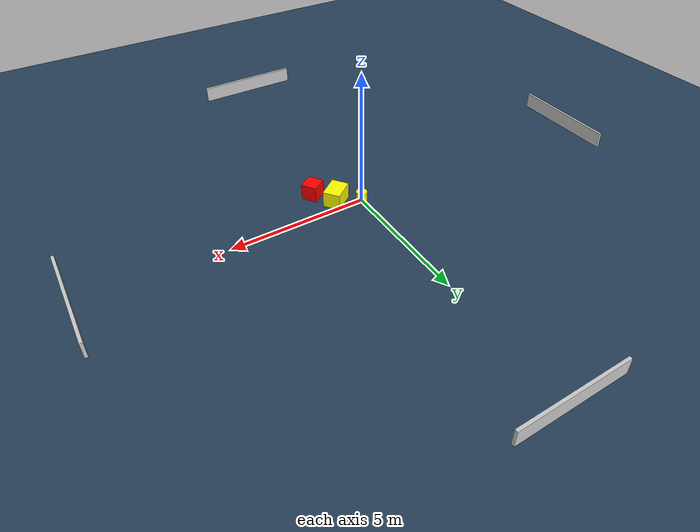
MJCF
<?xml version="1.0" ?>
<mujoco model="generated_environment">
  <option timestep="0.01" integrator="RK4" cone="elliptic"/>
  <default>
    <geom density="1"/>
  </default>
  <asset>
    <texture builtin="gradient" height="3072" name="skybox" rgb1="0.3 0.5 0.7" rgb2="0 0 0" type="skybox" width="512"/>
    <texture builtin="checker" height="300" name="groundplane" rgb1="0.2 0.3 0.4" rgb2="0.1 0.2 0.3" type="2d" width="300"/>
    <material name="groundplane" reflectance="0.2" texrepeat="5 5" texture="groundplane"/>
  </asset>
  <worldbody>
    <light dir="0 0 -1" directional="true" pos="0 0 1.5"/>
    <geom condim="3" friction="0.5 0.005 0.001" material="groundplane" name="floor" pos="0 0 0" size="0 0 0.05" type="plane"/>
    <body name="walls">
      <geom name="wall_1" condim="4" pos="-10.0 0.0 0.3" rgba="0.800000011920929 0.800000011920929 0.800000011920929 1.0" size="0.05 2.0 0.3" type="box"/>
      <geom name="wall_2" condim="4" pos="10.0 0.0 0.3" rgba="0.800000011920929 0.800000011920929 0.800000011920929 1.0" size="0.05 2.0 0.3" type="box"/>
      <geom name="wall_3" condim="4" pos="0.0 -10.0 0.3" rgba="0.800000011920929 0.800000011920929 0.800000011920929 1.0" size="2.0 0.05 0.3" type="box"/>
      <geom name="wall_4" condim="4" pos="0.0 10.0 0.3" rgba="0.800000011920929 0.800000011920929 0.800000011920929 1.0" size="2.0 0.05 0.3" type="box"/>
    </body>
    <body name="robot">
      <joint name="joint_x" type="slide" pos="0 0 0" axis="1 0 0"/>
      <joint name="joint_y" type="slide" pos="0 0 0" axis="0 1 0"/>
      <geom name="robot" type="cylinder" pos="0.0 0.0 0.2" size="0.2 0.2 0.0" mass="5.0" friction="1.0 0.005 0.0001" condim="4" rgba="1.0 1.0 0.0 1.0"/>
    </body>
    <body name="obstacle_1_movable">
      <geom name="obstacle_1_movable" condim="4" pos="0.8047053896488003 -0.43569154431049145 0.3" euler="0 0 306.80316514626907" friction="0.0 0.005 0.001" rgba="1.0 1.0 0.0 1.0" size="0.3115864270748388 0.4162694615766899 0.3" type="box" mass="0.1"/>
      <joint type="free"/>
    </body>
    <body name="obstacle_2_static">
      <geom name="obstacle_2_static" condim="4" pos="1.3554374716933177 -1.158814330840484 0.3" euler="0 0 302.8353045280732" friction="0.0 0.005 0.001" rgba="1.0 0.0 0.0 1.0" size="0.2845860228999073 0.2936865575764879 0.3" type="box"/>
    </body>
  </worldbody>
  <actuator>
    <motor name="actuator_x" joint="joint_x" gear="1" ctrlrange="-1 1"/>
    <motor name="actuator_y" joint="joint_y" gear="1" ctrlrange="-1 1"/>
  </actuator>
</mujoco>
